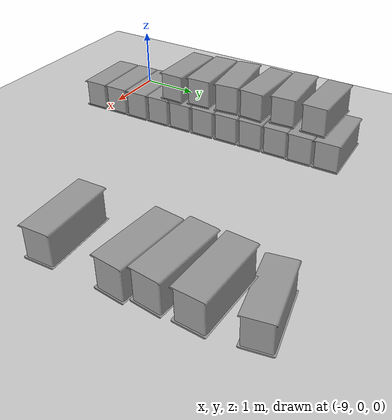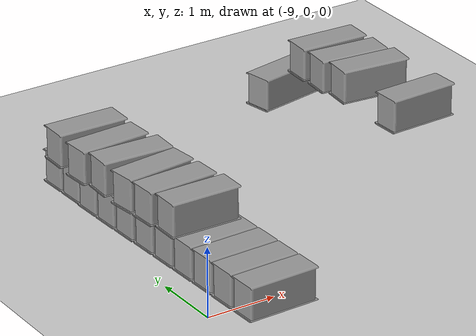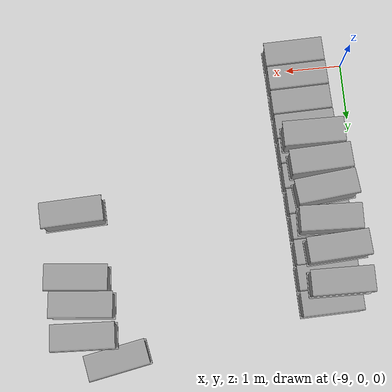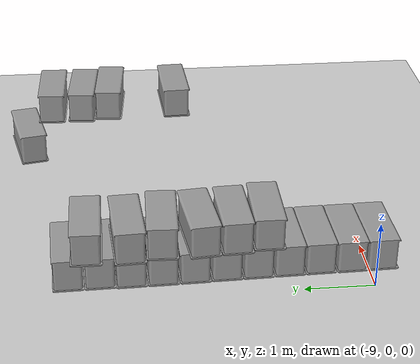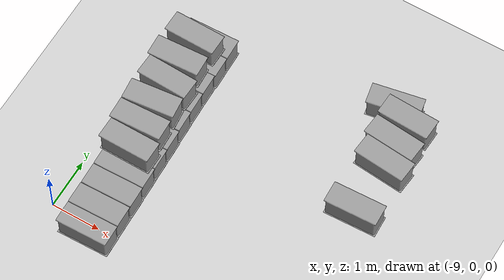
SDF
<sdf version="1.7">
 <world name="default">
  <model name="ground_plane">
   <static>1</static>
   <link name="link">
    <collision name="collision">
     <geometry><plane><normal>0 0 1</normal><size>100 100</size></plane></geometry>
     <surface>
      <contact><collide_bitmask>65535</collide_bitmask></contact>
      <friction><ode><mu>100</mu><mu2>50</mu2></ode></friction>
     </surface>
    </collision>
    <visual name="visual">
     <cast_shadows>0</cast_shadows>
     <geometry><plane><normal>0 0 1</normal><size>100 100</size></plane></geometry>
     <material>
      <script><uri>file://media/materials/scripts/gazebo.material</uri><name>Gazebo/Grey</name></script>
     </material>
    </visual>
   </link>
  </model>
  <model name="cotton_heng">
   <model name="cotton_me">
    <link name="link_1">
     <inertial>
      <mass>1</mass>
      <inertia>
       <ixx>0.166667</ixx>
       <ixy>0</ixy>
       <ixz>0</ixz>
       <iyy>0.166667</iyy>
       <iyz>0</iyz>
       <izz>0.166667</izz>
      </inertia>
     </inertial>
     <visual name="visual">
      <geometry><mesh><uri>/home/cyun/cotton_box.stl</uri><scale>1 1 1</scale></mesh></geometry>
      <material>
       <lighting>1</lighting>
       <script><uri>file://media/materials/scripts/gazebo.material</uri><name>Gazebo/Grey</name></script>
       <shader type="pixel"/>
      </material>
     </visual>
     <collision name="collision">
      <geometry><mesh><uri>/home/cyun/cotton_box.stl</uri><scale>1 1 1</scale></mesh></geometry>
      <surface>
       <friction>
        <ode><mu>1</mu><mu2>1</mu2><fdir1>0 0 0</fdir1><slip1>0</slip1><slip2>0</slip2></ode>
        <torsional>
         <coefficient>1</coefficient>
         <patch_radius>0</patch_radius>
         <surface_radius>0</surface_radius>
         <use_patch_radius>1</use_patch_radius>
         <ode><slip>0</slip></ode>
        </torsional>
       </friction>
       <bounce><restitution_coefficient>0</restitution_coefficient><threshold>1e+06</threshold></bounce>
       <contact>
        <collide_without_contact>0</collide_without_contact>
        <collide_without_contact_bitmask>1</collide_without_contact_bitmask>
        <collide_bitmask>1</collide_bitmask>
        <ode>
         <soft_cfm>0</soft_cfm>
         <soft_erp>0.2</soft_erp>
         <kp>1e+13</kp>
         <kd>1</kd>
         <max_vel>0.01</max_vel>
         <min_depth>0</min_depth>
        </ode>
        <bullet>
         <split_impulse>1</split_impulse>
         <split_impulse_penetration_threshold>-0.01</split_impulse_penetration_threshold>
         <soft_cfm>0</soft_cfm>
         <soft_erp>0.2</soft_erp>
         <kp>1e+13</kp>
         <kd>1</kd>
        </bullet>
       </contact>
      </surface>
     </collision>
    </link>
    <static>0</static>
    <pose>-1.77996 -0.007813 0 0 -0 0</pose>
   </model>
   <model name="cotton_me_clone">
    <link name="link_1">
     <inertial>
      <mass>1</mass>
      <inertia>
       <ixx>0.166667</ixx>
       <ixy>0</ixy>
       <ixz>0</ixz>
       <iyy>0.166667</iyy>
       <iyz>0</iyz>
       <izz>0.166667</izz>
      </inertia>
     </inertial>
     <visual name="visual">
      <geometry><mesh><uri>/home/cyun/cotton_box.stl</uri><scale>1 1 1</scale></mesh></geometry>
      <material>
       <lighting>1</lighting>
       <script><uri>file://media/materials/scripts/gazebo.material</uri><name>Gazebo/Grey</name></script>
       <shader type="pixel"/>
      </material>
     </visual>
     <collision name="collision">
      <geometry><mesh><uri>/home/cyun/cotton_box.stl</uri><scale>1 1 1</scale></mesh></geometry>
      <surface>
       <friction>
        <ode><mu>1</mu><mu2>1</mu2><fdir1>0 0 0</fdir1><slip1>0</slip1><slip2>0</slip2></ode>
        <torsional>
         <coefficient>1</coefficient>
         <patch_radius>0</patch_radius>
         <surface_radius>0</surface_radius>
         <use_patch_radius>1</use_patch_radius>
         <ode><slip>0</slip></ode>
        </torsional>
       </friction>
       <bounce><restitution_coefficient>0</restitution_coefficient><threshold>1e+06</threshold></bounce>
       <contact>
        <collide_without_contact>0</collide_without_contact>
        <collide_without_contact_bitmask>1</collide_without_contact_bitmask>
        <collide_bitmask>1</collide_bitmask>
        <ode>
         <soft_cfm>0</soft_cfm>
         <soft_erp>0.2</soft_erp>
         <kp>1e+13</kp>
         <kd>1</kd>
         <max_vel>0.01</max_vel>
         <min_depth>0</min_depth>
        </ode>
        <bullet>
         <split_impulse>1</split_impulse>
         <split_impulse_penetration_threshold>-0.01</split_impulse_penetration_threshold>
         <soft_cfm>0</soft_cfm>
         <soft_erp>0.2</soft_erp>
         <kp>1e+13</kp>
         <kd>1</kd>
        </bullet>
       </contact>
      </surface>
     </collision>
    </link>
    <static>0</static>
    <pose>-1.33368 -0.009895 0 0 -0 0</pose>
   </model>
   <model name="cotton_me_clone_0">
    <link name="link_1">
     <inertial>
      <mass>1</mass>
      <inertia>
       <ixx>0.166667</ixx>
       <ixy>0</ixy>
       <ixz>0</ixz>
       <iyy>0.166667</iyy>
       <iyz>0</iyz>
       <izz>0.166667</izz>
      </inertia>
     </inertial>
     <visual name="visual">
      <geometry><mesh><uri>/home/cyun/cotton_box.stl</uri><scale>1 1 1</scale></mesh></geometry>
      <material>
       <lighting>1</lighting>
       <script><uri>file://media/materials/scripts/gazebo.material</uri><name>Gazebo/Grey</name></script>
       <shader type="pixel"/>
      </material>
     </visual>
     <collision name="collision">
      <geometry><mesh><uri>/home/cyun/cotton_box.stl</uri><scale>1 1 1</scale></mesh></geometry>
      <surface>
       <friction>
        <ode><mu>1</mu><mu2>1</mu2><fdir1>0 0 0</fdir1><slip1>0</slip1><slip2>0</slip2></ode>
        <torsional>
         <coefficient>1</coefficient>
         <patch_radius>0</patch_radius>
         <surface_radius>0</surface_radius>
         <use_patch_radius>1</use_patch_radius>
         <ode><slip>0</slip></ode>
        </torsional>
       </friction>
       <bounce><restitution_coefficient>0</restitution_coefficient><threshold>1e+06</threshold></bounce>
       <contact>
        <collide_without_contact>0</collide_without_contact>
        <collide_without_contact_bitmask>1</collide_without_contact_bitmask>
        <collide_bitmask>1</collide_bitmask>
        <ode>
         <soft_cfm>0</soft_cfm>
         <soft_erp>0.2</soft_erp>
         <kp>1e+13</kp>
         <kd>1</kd>
         <max_vel>0.01</max_vel>
         <min_depth>0</min_depth>
        </ode>
        <bullet>
         <split_impulse>1</split_impulse>
         <split_impulse_penetration_threshold>-0.01</split_impulse_penetration_threshold>
         <soft_cfm>0</soft_cfm>
         <soft_erp>0.2</soft_erp>
         <kp>1e+13</kp>
         <kd>1</kd>
        </bullet>
       </contact>
      </surface>
     </collision>
    </link>
    <static>0</static>
    <pose>-0.889452 -0.005774 0 0 -0 0</pose>
   </model>
   <model name="cotton_me_clone_1">
    <link name="link_1">
     <inertial>
      <mass>1</mass>
      <inertia>
       <ixx>0.166667</ixx>
       <ixy>0</ixy>
       <ixz>0</ixz>
       <iyy>0.166667</iyy>
       <iyz>0</iyz>
       <izz>0.166667</izz>
      </inertia>
     </inertial>
     <visual name="visual">
      <geometry><mesh><uri>/home/cyun/cotton_box.stl</uri><scale>1 1 1</scale></mesh></geometry>
      <material>
       <lighting>1</lighting>
       <script><uri>file://media/materials/scripts/gazebo.material</uri><name>Gazebo/Grey</name></script>
       <shader type="pixel"/>
      </material>
     </visual>
     <collision name="collision">
      <geometry><mesh><uri>/home/cyun/cotton_box.stl</uri><scale>1 1 1</scale></mesh></geometry>
      <surface>
       <friction>
        <ode><mu>1</mu><mu2>1</mu2><fdir1>0 0 0</fdir1><slip1>0</slip1><slip2>0</slip2></ode>
        <torsional>
         <coefficient>1</coefficient>
         <patch_radius>0</patch_radius>
         <surface_radius>0</surface_radius>
         <use_patch_radius>1</use_patch_radius>
         <ode><slip>0</slip></ode>
        </torsional>
       </friction>
       <bounce><restitution_coefficient>0</restitution_coefficient><threshold>1e+06</threshold></bounce>
       <contact>
        <collide_without_contact>0</collide_without_contact>
        <collide_without_contact_bitmask>1</collide_without_contact_bitmask>
        <collide_bitmask>1</collide_bitmask>
        <ode>
         <soft_cfm>0</soft_cfm>
         <soft_erp>0.2</soft_erp>
         <kp>1e+13</kp>
         <kd>1</kd>
         <max_vel>0.01</max_vel>
         <min_depth>0</min_depth>
        </ode>
        <bullet>
         <split_impulse>1</split_impulse>
         <split_impulse_penetration_threshold>-0.01</split_impulse_penetration_threshold>
         <soft_cfm>0</soft_cfm>
         <soft_erp>0.2</soft_erp>
         <kp>1e+13</kp>
         <kd>1</kd>
        </bullet>
       </contact>
      </surface>
     </collision>
    </link>
    <static>0</static>
    <pose>-0.445737 -0.001627 0 0 -0 0</pose>
   </model>
   <model name="cotton_me_clone_2">
    <link name="link_1">
     <inertial>
      <mass>1</mass>
      <inertia>
       <ixx>0.166667</ixx>
       <ixy>0</ixy>
       <ixz>0</ixz>
       <iyy>0.166667</iyy>
       <iyz>0</iyz>
       <izz>0.166667</izz>
      </inertia>
     </inertial>
     <visual name="visual">
      <geometry><mesh><uri>/home/cyun/cotton_box.stl</uri><scale>1 1 1</scale></mesh></geometry>
      <material>
       <lighting>1</lighting>
       <script><uri>file://media/materials/scripts/gazebo.material</uri><name>Gazebo/Grey</name></script>
       <shader type="pixel"/>
      </material>
     </visual>
     <collision name="collision">
      <geometry><mesh><uri>/home/cyun/cotton_box.stl</uri><scale>1 1 1</scale></mesh></geometry>
      <surface>
       <friction>
        <ode><mu>1</mu><mu2>1</mu2><fdir1>0 0 0</fdir1><slip1>0</slip1><slip2>0</slip2></ode>
        <torsional>
         <coefficient>1</coefficient>
         <patch_radius>0</patch_radius>
         <surface_radius>0</surface_radius>
         <use_patch_radius>1</use_patch_radius>
         <ode><slip>0</slip></ode>
        </torsional>
       </friction>
       <bounce><restitution_coefficient>0</restitution_coefficient><threshold>1e+06</threshold></bounce>
       <contact>
        <collide_without_contact>0</collide_without_contact>
        <collide_without_contact_bitmask>1</collide_without_contact_bitmask>
        <collide_bitmask>1</collide_bitmask>
        <ode>
         <soft_cfm>0</soft_cfm>
         <soft_erp>0.2</soft_erp>
         <kp>1e+13</kp>
         <kd>1</kd>
         <max_vel>0.01</max_vel>
         <min_depth>0</min_depth>
        </ode>
        <bullet>
         <split_impulse>1</split_impulse>
         <split_impulse_penetration_threshold>-0.01</split_impulse_penetration_threshold>
         <soft_cfm>0</soft_cfm>
         <soft_erp>0.2</soft_erp>
         <kp>1e+13</kp>
         <kd>1</kd>
        </bullet>
       </contact>
      </surface>
     </collision>
    </link>
    <static>0</static>
    <pose>0.001194 0.000886 0 0 -0 0</pose>
   </model>
   <model name="cotton_me_clone_3">
    <link name="link_1">
     <inertial>
      <mass>1</mass>
      <inertia>
       <ixx>0.166667</ixx>
       <ixy>0</ixy>
       <ixz>0</ixz>
       <iyy>0.166667</iyy>
       <iyz>0</iyz>
       <izz>0.166667</izz>
      </inertia>
     </inertial>
     <visual name="visual">
      <geometry><mesh><uri>/home/cyun/cotton_box.stl</uri><scale>1 1 1</scale></mesh></geometry>
      <material>
       <lighting>1</lighting>
       <script><uri>file://media/materials/scripts/gazebo.material</uri><name>Gazebo/Grey</name></script>
       <shader type="pixel"/>
      </material>
     </visual>
     <collision name="collision">
      <geometry><mesh><uri>/home/cyun/cotton_box.stl</uri><scale>1 1 1</scale></mesh></geometry>
      <surface>
       <friction>
        <ode><mu>1</mu><mu2>1</mu2><fdir1>0 0 0</fdir1><slip1>0</slip1><slip2>0</slip2></ode>
        <torsional>
         <coefficient>1</coefficient>
         <patch_radius>0</patch_radius>
         <surface_radius>0</surface_radius>
         <use_patch_radius>1</use_patch_radius>
         <ode><slip>0</slip></ode>
        </torsional>
       </friction>
       <bounce><restitution_coefficient>0</restitution_coefficient><threshold>1e+06</threshold></bounce>
       <contact>
        <collide_without_contact>0</collide_without_contact>
        <collide_without_contact_bitmask>1</collide_without_contact_bitmask>
        <collide_bitmask>1</collide_bitmask>
        <ode>
         <soft_cfm>0</soft_cfm>
         <soft_erp>0.2</soft_erp>
         <kp>1e+13</kp>
         <kd>1</kd>
         <max_vel>0.01</max_vel>
         <min_depth>0</min_depth>
        </ode>
        <bullet>
         <split_impulse>1</split_impulse>
         <split_impulse_penetration_threshold>-0.01</split_impulse_penetration_threshold>
         <soft_cfm>0</soft_cfm>
         <soft_erp>0.2</soft_erp>
         <kp>1e+13</kp>
         <kd>1</kd>
        </bullet>
       </contact>
      </surface>
     </collision>
    </link>
    <static>0</static>
    <pose>0.448503 0.010252 0 0 -0 0</pose>
   </model>
   <model name="cotton_me_clone_4">
    <link name="link_1">
     <inertial>
      <mass>1</mass>
      <inertia>
       <ixx>0.166667</ixx>
       <ixy>0</ixy>
       <ixz>0</ixz>
       <iyy>0.166667</iyy>
       <iyz>0</iyz>
       <izz>0.166667</izz>
      </inertia>
     </inertial>
     <visual name="visual">
      <geometry><mesh><uri>/home/cyun/cotton_box.stl</uri><scale>1 1 1</scale></mesh></geometry>
      <material>
       <lighting>1</lighting>
       <script><uri>file://media/materials/scripts/gazebo.material</uri><name>Gazebo/Grey</name></script>
       <shader type="pixel"/>
      </material>
     </visual>
     <collision name="collision">
      <geometry><mesh><uri>/home/cyun/cotton_box.stl</uri><scale>1 1 1</scale></mesh></geometry>
      <surface>
       <friction>
        <ode><mu>1</mu><mu2>1</mu2><fdir1>0 0 0</fdir1><slip1>0</slip1><slip2>0</slip2></ode>
        <torsional>
         <coefficient>1</coefficient>
         <patch_radius>0</patch_radius>
         <surface_radius>0</surface_radius>
         <use_patch_radius>1</use_patch_radius>
         <ode><slip>0</slip></ode>
        </torsional>
       </friction>
       <bounce><restitution_coefficient>0</restitution_coefficient><threshold>1e+06</threshold></bounce>
       <contact>
        <collide_without_contact>0</collide_without_contact>
        <collide_without_contact_bitmask>1</collide_without_contact_bitmask>
        <collide_bitmask>1</collide_bitmask>
        <ode>
         <soft_cfm>0</soft_cfm>
         <soft_erp>0.2</soft_erp>
         <kp>1e+13</kp>
         <kd>1</kd>
         <max_vel>0.01</max_vel>
         <min_depth>0</min_depth>
        </ode>
        <bullet>
         <split_impulse>1</split_impulse>
         <split_impulse_penetration_threshold>-0.01</split_impulse_penetration_threshold>
         <soft_cfm>0</soft_cfm>
         <soft_erp>0.2</soft_erp>
         <kp>1e+13</kp>
         <kd>1</kd>
        </bullet>
       </contact>
      </surface>
     </collision>
    </link>
    <static>0</static>
    <pose>0.894659 0.014624 0 0 -0 0</pose>
   </model>
   <model name="cotton_me_clone_5">
    <link name="link_1">
     <inertial>
      <mass>1</mass>
      <inertia>
       <ixx>0.166667</ixx>
       <ixy>0</ixy>
       <ixz>0</ixz>
       <iyy>0.166667</iyy>
       <iyz>0</iyz>
       <izz>0.166667</izz>
      </inertia>
     </inertial>
     <visual name="visual">
      <geometry><mesh><uri>/home/cyun/cotton_box.stl</uri><scale>1 1 1</scale></mesh></geometry>
      <material>
       <lighting>1</lighting>
       <script><uri>file://media/materials/scripts/gazebo.material</uri><name>Gazebo/Grey</name></script>
       <shader type="pixel"/>
      </material>
     </visual>
     <collision name="collision">
      <geometry><mesh><uri>/home/cyun/cotton_box.stl</uri><scale>1 1 1</scale></mesh></geometry>
      <surface>
       <friction>
        <ode><mu>1</mu><mu2>1</mu2><fdir1>0 0 0</fdir1><slip1>0</slip1><slip2>0</slip2></ode>
        <torsional>
         <coefficient>1</coefficient>
         <patch_radius>0</patch_radius>
         <surface_radius>0</surface_radius>
         <use_patch_radius>1</use_patch_radius>
         <ode><slip>0</slip></ode>
        </torsional>
       </friction>
       <bounce><restitution_coefficient>0</restitution_coefficient><threshold>1e+06</threshold></bounce>
       <contact>
        <collide_without_contact>0</collide_without_contact>
        <collide_without_contact_bitmask>1</collide_without_contact_bitmask>
        <collide_bitmask>1</collide_bitmask>
        <ode>
         <soft_cfm>0</soft_cfm>
         <soft_erp>0.2</soft_erp>
         <kp>1e+13</kp>
         <kd>1</kd>
         <max_vel>0.01</max_vel>
         <min_depth>0</min_depth>
        </ode>
        <bullet>
         <split_impulse>1</split_impulse>
         <split_impulse_penetration_threshold>-0.01</split_impulse_penetration_threshold>
         <soft_cfm>0</soft_cfm>
         <soft_erp>0.2</soft_erp>
         <kp>1e+13</kp>
         <kd>1</kd>
        </bullet>
       </contact>
      </surface>
     </collision>
    </link>
    <static>0</static>
    <pose>1.33945 0.013464 0 0 -0 0</pose>
   </model>
   <model name="cotton_me_clone_6">
    <link name="link_1">
     <inertial>
      <mass>1</mass>
      <inertia>
       <ixx>0.166667</ixx>
       <ixy>0</ixy>
       <ixz>0</ixz>
       <iyy>0.166667</iyy>
       <iyz>0</iyz>
       <izz>0.166667</izz>
      </inertia>
     </inertial>
     <visual name="visual">
      <geometry><mesh><uri>/home/cyun/cotton_box.stl</uri><scale>1 1 1</scale></mesh></geometry>
      <material>
       <lighting>1</lighting>
       <script><uri>file://media/materials/scripts/gazebo.material</uri><name>Gazebo/Grey</name></script>
       <shader type="pixel"/>
      </material>
     </visual>
     <collision name="collision">
      <geometry><mesh><uri>/home/cyun/cotton_box.stl</uri><scale>1 1 1</scale></mesh></geometry>
      <surface>
       <friction>
        <ode><mu>1</mu><mu2>1</mu2><fdir1>0 0 0</fdir1><slip1>0</slip1><slip2>0</slip2></ode>
        <torsional>
         <coefficient>1</coefficient>
         <patch_radius>0</patch_radius>
         <surface_radius>0</surface_radius>
         <use_patch_radius>1</use_patch_radius>
         <ode><slip>0</slip></ode>
        </torsional>
       </friction>
       <bounce><restitution_coefficient>0</restitution_coefficient><threshold>1e+06</threshold></bounce>
       <contact>
        <collide_without_contact>0</collide_without_contact>
        <collide_without_contact_bitmask>1</collide_without_contact_bitmask>
        <collide_bitmask>1</collide_bitmask>
        <ode>
         <soft_cfm>0</soft_cfm>
         <soft_erp>0.2</soft_erp>
         <kp>1e+13</kp>
         <kd>1</kd>
         <max_vel>0.01</max_vel>
         <min_depth>0</min_depth>
        </ode>
        <bullet>
         <split_impulse>1</split_impulse>
         <split_impulse_penetration_threshold>-0.01</split_impulse_penetration_threshold>
         <soft_cfm>0</soft_cfm>
         <soft_erp>0.2</soft_erp>
         <kp>1e+13</kp>
         <kd>1</kd>
        </bullet>
       </contact>
      </surface>
     </collision>
    </link>
    <static>0</static>
    <pose>1.77292 -0.000762 0 0 -0 0</pose>
   </model>
   <model name="cotton_me_clone_7">
    <link name="link_1">
     <inertial>
      <mass>1</mass>
      <inertia>
       <ixx>0.166667</ixx>
       <ixy>0</ixy>
       <ixz>0</ixz>
       <iyy>0.166667</iyy>
       <iyz>0</iyz>
       <izz>0.166667</izz>
      </inertia>
     </inertial>
     <visual name="visual">
      <geometry><mesh><uri>/home/cyun/cotton_box.stl</uri><scale>1 1 1</scale></mesh></geometry>
      <material>
       <lighting>1</lighting>
       <script><uri>file://media/materials/scripts/gazebo.material</uri><name>Gazebo/Grey</name></script>
       <shader type="pixel"/>
      </material>
     </visual>
     <collision name="collision">
      <geometry><mesh><uri>/home/cyun/cotton_box.stl</uri><scale>1 1 1</scale></mesh></geometry>
      <surface>
       <friction>
        <ode><mu>1</mu><mu2>1</mu2><fdir1>0 0 0</fdir1><slip1>0</slip1><slip2>0</slip2></ode>
        <torsional>
         <coefficient>1</coefficient>
         <patch_radius>0</patch_radius>
         <surface_radius>0</surface_radius>
         <use_patch_radius>1</use_patch_radius>
         <ode><slip>0</slip></ode>
        </torsional>
       </friction>
       <bounce><restitution_coefficient>0</restitution_coefficient><threshold>1e+06</threshold></bounce>
       <contact>
        <collide_without_contact>0</collide_without_contact>
        <collide_without_contact_bitmask>1</collide_without_contact_bitmask>
        <collide_bitmask>1</collide_bitmask>
        <ode>
         <soft_cfm>0</soft_cfm>
         <soft_erp>0.2</soft_erp>
         <kp>1e+13</kp>
         <kd>1</kd>
         <max_vel>0.01</max_vel>
         <min_depth>0</min_depth>
        </ode>
        <bullet>
         <split_impulse>1</split_impulse>
         <split_impulse_penetration_threshold>-0.01</split_impulse_penetration_threshold>
         <soft_cfm>0</soft_cfm>
         <soft_erp>0.2</soft_erp>
         <kp>1e+13</kp>
         <kd>1</kd>
        </bullet>
       </contact>
      </surface>
     </collision>
    </link>
    <static>0</static>
    <pose>2.21576 -0.001881 0 0 -0 0</pose>
   </model>
   <model name="cotton_me_clone_8">
    <link name="link_1">
     <inertial>
      <mass>1</mass>
      <inertia>
       <ixx>0.166667</ixx>
       <ixy>0</ixy>
       <ixz>0</ixz>
       <iyy>0.166667</iyy>
       <iyz>0</iyz>
       <izz>0.166667</izz>
      </inertia>
     </inertial>
     <visual name="visual">
      <geometry><mesh><uri>/home/cyun/cotton_box.stl</uri><scale>1 1 1</scale></mesh></geometry>
      <material>
       <lighting>1</lighting>
       <script><uri>file://media/materials/scripts/gazebo.material</uri><name>Gazebo/Grey</name></script>
       <shader type="pixel"/>
      </material>
     </visual>
     <collision name="collision">
      <geometry><mesh><uri>/home/cyun/cotton_box.stl</uri><scale>1 1 1</scale></mesh></geometry>
      <surface>
       <friction>
        <ode><mu>1</mu><mu2>1</mu2><fdir1>0 0 0</fdir1><slip1>0</slip1><slip2>0</slip2></ode>
        <torsional>
         <coefficient>1</coefficient>
         <patch_radius>0</patch_radius>
         <surface_radius>0</surface_radius>
         <use_patch_radius>1</use_patch_radius>
         <ode><slip>0</slip></ode>
        </torsional>
       </friction>
       <bounce><restitution_coefficient>0</restitution_coefficient><threshold>1e+06</threshold></bounce>
       <contact>
        <collide_without_contact>0</collide_without_contact>
        <collide_without_contact_bitmask>1</collide_without_contact_bitmask>
        <collide_bitmask>1</collide_bitmask>
        <ode>
         <soft_cfm>0</soft_cfm>
         <soft_erp>0.2</soft_erp>
         <kp>1e+13</kp>
         <kd>1</kd>
         <max_vel>0.01</max_vel>
         <min_depth>0</min_depth>
        </ode>
        <bullet>
         <split_impulse>1</split_impulse>
         <split_impulse_penetration_threshold>-0.01</split_impulse_penetration_threshold>
         <soft_cfm>0</soft_cfm>
         <soft_erp>0.2</soft_erp>
         <kp>1e+13</kp>
         <kd>1</kd>
        </bullet>
       </contact>
      </surface>
     </collision>
    </link>
    <static>0</static>
    <pose>-2.22367 -0.011477 0 0 -0 0</pose>
   </model>
   <static>0</static>
   <pose>-8.18289 2.03525 0.01999 -1e-06 -0 1.59641</pose>
  </model>
  <model name="cotton_me_0_clone_6_clone_0_clone_clone_9">
   <link name="link_1">
    <inertial>
     <mass>1</mass>
     <inertia>
      <ixx>0.166667</ixx>
      <ixy>0</ixy>
      <ixz>0</ixz>
      <iyy>0.166667</iyy>
      <iyz>0</iyz>
      <izz>0.166667</izz>
     </inertia>
    </inertial>
    <visual name="visual">
     <geometry><mesh><uri>/home/cyun/cotton_box.stl</uri><scale>1 1 1</scale></mesh></geometry>
     <material>
      <lighting>1</lighting>
      <script><uri>file://media/materials/scripts/gazebo.material</uri><name>Gazebo/Grey</name></script>
      <shader type="pixel"/>
     </material>
    </visual>
    <collision name="collision">
     <geometry><mesh><uri>/home/cyun/cotton_box.stl</uri><scale>1 1 1</scale></mesh></geometry>
     <surface>
      <friction>
       <ode><mu>1</mu><mu2>1</mu2><fdir1>0 0 0</fdir1><slip1>0</slip1><slip2>0</slip2></ode>
       <torsional>
        <coefficient>1</coefficient>
        <patch_radius>0</patch_radius>
        <surface_radius>0</surface_radius>
        <use_patch_radius>1</use_patch_radius>
        <ode><slip>0</slip></ode>
       </torsional>
      </friction>
      <bounce><restitution_coefficient>0</restitution_coefficient><threshold>1e+06</threshold></bounce>
      <contact>
       <collide_without_contact>0</collide_without_contact>
       <collide_without_contact_bitmask>1</collide_without_contact_bitmask>
       <collide_bitmask>1</collide_bitmask>
       <ode>
        <soft_cfm>0</soft_cfm>
        <soft_erp>0.2</soft_erp>
        <kp>1e+13</kp>
        <kd>1</kd>
        <max_vel>0.01</max_vel>
        <min_depth>0</min_depth>
       </ode>
       <bullet>
        <split_impulse>1</split_impulse>
        <split_impulse_penetration_threshold>-0.01</split_impulse_penetration_threshold>
        <soft_cfm>0</soft_cfm>
        <soft_erp>0.2</soft_erp>
        <kp>1e+13</kp>
        <kd>1</kd>
       </bullet>
      </contact>
     </surface>
    </collision>
   </link>
   <static>0</static>
   <pose>-4.57797 4.86756 0.01995 -4e-06 -3e-06 1.75819</pose>
  </model>
  <model name="cotton_me_0_clone_6_clone_0_clone_clone_11">
   <link name="link_1">
    <inertial>
     <mass>1</mass>
     <inertia>
      <ixx>0.166667</ixx>
      <ixy>0</ixy>
      <ixz>0</ixz>
      <iyy>0.166667</iyy>
      <iyz>0</iyz>
      <izz>0.166667</izz>
     </inertia>
    </inertial>
    <visual name="visual">
     <geometry><mesh><uri>/home/cyun/cotton_box.stl</uri><scale>1 1 1</scale></mesh></geometry>
     <material>
      <lighting>1</lighting>
      <script><uri>file://media/materials/scripts/gazebo.material</uri><name>Gazebo/Grey</name></script>
      <shader type="pixel"/>
     </material>
    </visual>
    <collision name="collision">
     <geometry><mesh><uri>/home/cyun/cotton_box.stl</uri><scale>1 1 1</scale></mesh></geometry>
     <surface>
      <friction>
       <ode><mu>1</mu><mu2>1</mu2><fdir1>0 0 0</fdir1><slip1>0</slip1><slip2>0</slip2></ode>
       <torsional>
        <coefficient>1</coefficient>
        <patch_radius>0</patch_radius>
        <surface_radius>0</surface_radius>
        <use_patch_radius>1</use_patch_radius>
        <ode><slip>0</slip></ode>
       </torsional>
      </friction>
      <bounce><restitution_coefficient>0</restitution_coefficient><threshold>1e+06</threshold></bounce>
      <contact>
       <collide_without_contact>0</collide_without_contact>
       <collide_without_contact_bitmask>1</collide_without_contact_bitmask>
       <collide_bitmask>1</collide_bitmask>
       <ode>
        <soft_cfm>0</soft_cfm>
        <soft_erp>0.2</soft_erp>
        <kp>1e+13</kp>
        <kd>1</kd>
        <max_vel>0.01</max_vel>
        <min_depth>0</min_depth>
       </ode>
       <bullet>
        <split_impulse>1</split_impulse>
        <split_impulse_penetration_threshold>-0.01</split_impulse_penetration_threshold>
        <soft_cfm>0</soft_cfm>
        <soft_erp>0.2</soft_erp>
        <kp>1e+13</kp>
        <kd>1</kd>
       </bullet>
      </contact>
     </surface>
    </collision>
   </link>
   <static>0</static>
   <pose>-4.11314 4.44843 0.509962 -3e-06 2.8e-05 1.52488</pose>
  </model>
  <model name="cotton_me_0_clone_6_clone_0_clone_clone_12">
   <link name="link_1">
    <inertial>
     <mass>1</mass>
     <inertia>
      <ixx>0.166667</ixx>
      <ixy>0</ixy>
      <ixz>0</ixz>
      <iyy>0.166667</iyy>
      <iyz>0</iyz>
      <izz>0.166667</izz>
     </inertia>
    </inertial>
    <visual name="visual">
     <geometry><mesh><uri>/home/cyun/cotton_box.stl</uri><scale>1 1 1</scale></mesh></geometry>
     <material>
      <lighting>1</lighting>
      <script><uri>file://media/materials/scripts/gazebo.material</uri><name>Gazebo/Grey</name></script>
      <shader type="pixel"/>
     </material>
    </visual>
    <collision name="collision">
     <geometry><mesh><uri>/home/cyun/cotton_box.stl</uri><scale>1 1 1</scale></mesh></geometry>
     <surface>
      <friction>
       <ode><mu>1</mu><mu2>1</mu2><fdir1>0 0 0</fdir1><slip1>0</slip1><slip2>0</slip2></ode>
       <torsional>
        <coefficient>1</coefficient>
        <patch_radius>0</patch_radius>
        <surface_radius>0</surface_radius>
        <use_patch_radius>1</use_patch_radius>
        <ode><slip>0</slip></ode>
       </torsional>
      </friction>
      <bounce><restitution_coefficient>0</restitution_coefficient><threshold>1e+06</threshold></bounce>
      <contact>
       <collide_without_contact>0</collide_without_contact>
       <collide_without_contact_bitmask>1</collide_without_contact_bitmask>
       <collide_bitmask>1</collide_bitmask>
       <ode>
        <soft_cfm>0</soft_cfm>
        <soft_erp>0.2</soft_erp>
        <kp>1e+13</kp>
        <kd>1</kd>
        <max_vel>0.01</max_vel>
        <min_depth>0</min_depth>
       </ode>
       <bullet>
        <split_impulse>1</split_impulse>
        <split_impulse_penetration_threshold>-0.01</split_impulse_penetration_threshold>
        <soft_cfm>0</soft_cfm>
        <soft_erp>0.2</soft_erp>
        <kp>1e+13</kp>
        <kd>1</kd>
       </bullet>
      </contact>
     </surface>
    </collision>
   </link>
   <static>0</static>
   <pose>-4.11657 3.93839 0.509972 -6.3e-05 2.2e-05 1.47719</pose>
  </model>
  <model name="cotton_me_0_clone_6_clone_0_clone_clone_13">
   <link name="link_1">
    <inertial>
     <mass>1</mass>
     <inertia>
      <ixx>0.166667</ixx>
      <ixy>0</ixy>
      <ixz>0</ixz>
      <iyy>0.166667</iyy>
      <iyz>0</iyz>
      <izz>0.166667</izz>
     </inertia>
    </inertial>
    <visual name="visual">
     <geometry><mesh><uri>/home/cyun/cotton_box.stl</uri><scale>1 1 1</scale></mesh></geometry>
     <material>
      <lighting>1</lighting>
      <script><uri>file://media/materials/scripts/gazebo.material</uri><name>Gazebo/Grey</name></script>
      <shader type="pixel"/>
     </material>
    </visual>
    <collision name="collision">
     <geometry><mesh><uri>/home/cyun/cotton_box.stl</uri><scale>1 1 1</scale></mesh></geometry>
     <surface>
      <friction>
       <ode><mu>1</mu><mu2>1</mu2><fdir1>0 0 0</fdir1><slip1>0</slip1><slip2>0</slip2></ode>
       <torsional>
        <coefficient>1</coefficient>
        <patch_radius>0</patch_radius>
        <surface_radius>0</surface_radius>
        <use_patch_radius>1</use_patch_radius>
        <ode><slip>0</slip></ode>
       </torsional>
      </friction>
      <bounce><restitution_coefficient>0</restitution_coefficient><threshold>1e+06</threshold></bounce>
      <contact>
       <collide_without_contact>0</collide_without_contact>
       <collide_without_contact_bitmask>1</collide_without_contact_bitmask>
       <collide_bitmask>1</collide_bitmask>
       <ode>
        <soft_cfm>0</soft_cfm>
        <soft_erp>0.2</soft_erp>
        <kp>1e+13</kp>
        <kd>1</kd>
        <max_vel>0.01</max_vel>
        <min_depth>0</min_depth>
       </ode>
       <bullet>
        <split_impulse>1</split_impulse>
        <split_impulse_penetration_threshold>-0.01</split_impulse_penetration_threshold>
        <soft_cfm>0</soft_cfm>
        <soft_erp>0.2</soft_erp>
        <kp>1e+13</kp>
        <kd>1</kd>
       </bullet>
      </contact>
     </surface>
    </collision>
   </link>
   <static>0</static>
   <pose>-4.06809 3.49144 0.509993 -1e-06 -2e-06 1.47637</pose>
  </model>
  <model name="cotton_me_0_clone_6_clone_0_clone_clone_20">
   <link name="link_1">
    <inertial>
     <mass>1</mass>
     <inertia>
      <ixx>0.166667</ixx>
      <ixy>0</ixy>
      <ixz>0</ixz>
      <iyy>0.166667</iyy>
      <iyz>0</iyz>
      <izz>0.166667</izz>
     </inertia>
    </inertial>
    <visual name="visual">
     <geometry><mesh><uri>/home/cyun/cotton_box.stl</uri><scale>1 1 1</scale></mesh></geometry>
     <material>
      <lighting>1</lighting>
      <script><uri>file://media/materials/scripts/gazebo.material</uri><name>Gazebo/Grey</name></script>
      <shader type="pixel"/>
     </material>
    </visual>
    <collision name="collision">
     <geometry><mesh><uri>/home/cyun/cotton_box.stl</uri><scale>1 1 1</scale></mesh></geometry>
     <surface>
      <friction>
       <ode><mu>1</mu><mu2>1</mu2><fdir1>0 0 0</fdir1><slip1>0</slip1><slip2>0</slip2></ode>
       <torsional>
        <coefficient>1</coefficient>
        <patch_radius>0</patch_radius>
        <surface_radius>0</surface_radius>
        <use_patch_radius>1</use_patch_radius>
        <ode><slip>0</slip></ode>
       </torsional>
      </friction>
      <bounce><restitution_coefficient>0</restitution_coefficient><threshold>1e+06</threshold></bounce>
      <contact>
       <collide_without_contact>0</collide_without_contact>
       <collide_without_contact_bitmask>1</collide_without_contact_bitmask>
       <collide_bitmask>1</collide_bitmask>
       <ode>
        <soft_cfm>0</soft_cfm>
        <soft_erp>0.2</soft_erp>
        <kp>1e+13</kp>
        <kd>1</kd>
        <max_vel>0.01</max_vel>
        <min_depth>0</min_depth>
       </ode>
       <bullet>
        <split_impulse>1</split_impulse>
        <split_impulse_penetration_threshold>-0.01</split_impulse_penetration_threshold>
        <soft_cfm>0</soft_cfm>
        <soft_erp>0.2</soft_erp>
        <kp>1e+13</kp>
        <kd>1</kd>
       </bullet>
      </contact>
     </surface>
    </collision>
   </link>
   <static>0</static>
   <pose>-4.06584 2.41153 0.51006 0.000143 -5.6e-05 1.6107</pose>
  </model>
  <model name="cotton_me_0_clone_6_clone_0_clone_clone_24">
   <link name="link_1">
    <inertial>
     <mass>1</mass>
     <inertia>
      <ixx>0.166667</ixx>
      <ixy>0</ixy>
      <ixz>0</ixz>
      <iyy>0.166667</iyy>
      <iyz>0</iyz>
      <izz>0.166667</izz>
     </inertia>
    </inertial>
    <visual name="visual">
     <geometry><mesh><uri>/home/cyun/cotton_box.stl</uri><scale>1 1 1</scale></mesh></geometry>
     <material>
      <lighting>1</lighting>
      <script><uri>file://media/materials/scripts/gazebo.material</uri><name>Gazebo/Grey</name></script>
      <shader type="pixel"/>
     </material>
    </visual>
    <collision name="collision">
     <geometry><mesh><uri>/home/cyun/cotton_box.stl</uri><scale>1 1 1</scale></mesh></geometry>
     <surface>
      <friction>
       <ode><mu>1</mu><mu2>1</mu2><fdir1>0 0 0</fdir1><slip1>0</slip1><slip2>0</slip2></ode>
       <torsional>
        <coefficient>1</coefficient>
        <patch_radius>0</patch_radius>
        <surface_radius>0</surface_radius>
        <use_patch_radius>1</use_patch_radius>
        <ode><slip>0</slip></ode>
       </torsional>
      </friction>
      <bounce><restitution_coefficient>0</restitution_coefficient><threshold>1e+06</threshold></bounce>
      <contact>
       <collide_without_contact>0</collide_without_contact>
       <collide_without_contact_bitmask>1</collide_without_contact_bitmask>
       <collide_bitmask>1</collide_bitmask>
       <ode>
        <soft_cfm>0</soft_cfm>
        <soft_erp>0.2</soft_erp>
        <kp>1e+13</kp>
        <kd>1</kd>
        <max_vel>0.01</max_vel>
        <min_depth>0</min_depth>
       </ode>
       <bullet>
        <split_impulse>1</split_impulse>
        <split_impulse_penetration_threshold>-0.01</split_impulse_penetration_threshold>
        <soft_cfm>0</soft_cfm>
        <soft_erp>0.2</soft_erp>
        <kp>1e+13</kp>
        <kd>1</kd>
       </bullet>
      </contact>
     </surface>
    </collision>
   </link>
   <static>0</static>
   <pose>-8.21067 1.44039 0.509998 -5e-06 -8e-06 1.5631</pose>
  </model>
  <model name="cotton_me_0_clone_6_clone_0_clone_clone_25">
   <link name="link_1">
    <inertial>
     <mass>1</mass>
     <inertia>
      <ixx>0.166667</ixx>
      <ixy>0</ixy>
      <ixz>0</ixz>
      <iyy>0.166667</iyy>
      <iyz>0</iyz>
      <izz>0.166667</izz>
     </inertia>
    </inertial>
    <visual name="visual">
     <geometry><mesh><uri>/home/cyun/cotton_box.stl</uri><scale>1 1 1</scale></mesh></geometry>
     <material>
      <lighting>1</lighting>
      <script><uri>file://media/materials/scripts/gazebo.material</uri><name>Gazebo/Grey</name></script>
      <shader type="pixel"/>
     </material>
    </visual>
    <collision name="collision">
     <geometry><mesh><uri>/home/cyun/cotton_box.stl</uri><scale>1 1 1</scale></mesh></geometry>
     <surface>
      <friction>
       <ode><mu>1</mu><mu2>1</mu2><fdir1>0 0 0</fdir1><slip1>0</slip1><slip2>0</slip2></ode>
       <torsional>
        <coefficient>1</coefficient>
        <patch_radius>0</patch_radius>
        <surface_radius>0</surface_radius>
        <use_patch_radius>1</use_patch_radius>
        <ode><slip>0</slip></ode>
       </torsional>
      </friction>
      <bounce><restitution_coefficient>0</restitution_coefficient><threshold>1e+06</threshold></bounce>
      <contact>
       <collide_without_contact>0</collide_without_contact>
       <collide_without_contact_bitmask>1</collide_without_contact_bitmask>
       <collide_bitmask>1</collide_bitmask>
       <ode>
        <soft_cfm>0</soft_cfm>
        <soft_erp>0.2</soft_erp>
        <kp>1e+13</kp>
        <kd>1</kd>
        <max_vel>0.01</max_vel>
        <min_depth>0</min_depth>
       </ode>
       <bullet>
        <split_impulse>1</split_impulse>
        <split_impulse_penetration_threshold>-0.01</split_impulse_penetration_threshold>
        <soft_cfm>0</soft_cfm>
        <soft_erp>0.2</soft_erp>
        <kp>1e+13</kp>
        <kd>1</kd>
       </bullet>
      </contact>
     </surface>
    </collision>
   </link>
   <static>0</static>
   <pose>-8.27325 1.91117 0.510003 1e-06 -4.7e-05 1.61187</pose>
  </model>
  <model name="cotton_me_0_clone_6_clone_0_clone_clone_26">
   <link name="link_1">
    <inertial>
     <mass>1</mass>
     <inertia>
      <ixx>0.166667</ixx>
      <ixy>0</ixy>
      <ixz>0</ixz>
      <iyy>0.166667</iyy>
      <iyz>0</iyz>
      <izz>0.166667</izz>
     </inertia>
    </inertial>
    <visual name="visual">
     <geometry><mesh><uri>/home/cyun/cotton_box.stl</uri><scale>1 1 1</scale></mesh></geometry>
     <material>
      <lighting>1</lighting>
      <script><uri>file://media/materials/scripts/gazebo.material</uri><name>Gazebo/Grey</name></script>
      <shader type="pixel"/>
     </material>
    </visual>
    <collision name="collision">
     <geometry><mesh><uri>/home/cyun/cotton_box.stl</uri><scale>1 1 1</scale></mesh></geometry>
     <surface>
      <friction>
       <ode><mu>1</mu><mu2>1</mu2><fdir1>0 0 0</fdir1><slip1>0</slip1><slip2>0</slip2></ode>
       <torsional>
        <coefficient>1</coefficient>
        <patch_radius>0</patch_radius>
        <surface_radius>0</surface_radius>
        <use_patch_radius>1</use_patch_radius>
        <ode><slip>0</slip></ode>
       </torsional>
      </friction>
      <bounce><restitution_coefficient>0</restitution_coefficient><threshold>1e+06</threshold></bounce>
      <contact>
       <collide_without_contact>0</collide_without_contact>
       <collide_without_contact_bitmask>1</collide_without_contact_bitmask>
       <collide_bitmask>1</collide_bitmask>
       <ode>
        <soft_cfm>0</soft_cfm>
        <soft_erp>0.2</soft_erp>
        <kp>1e+13</kp>
        <kd>1</kd>
        <max_vel>0.01</max_vel>
        <min_depth>0</min_depth>
       </ode>
       <bullet>
        <split_impulse>1</split_impulse>
        <split_impulse_penetration_threshold>-0.01</split_impulse_penetration_threshold>
        <soft_cfm>0</soft_cfm>
        <soft_erp>0.2</soft_erp>
        <kp>1e+13</kp>
        <kd>1</kd>
       </bullet>
      </contact>
     </surface>
    </collision>
   </link>
   <static>0</static>
   <pose>-8.31088 2.39219 0.51 -1e-06 -5e-06 1.67501</pose>
  </model>
  <model name="cotton_me_0_clone_6_clone_0_clone_clone_27">
   <link name="link_1">
    <inertial>
     <mass>1</mass>
     <inertia>
      <ixx>0.166667</ixx>
      <ixy>0</ixy>
      <ixz>0</ixz>
      <iyy>0.166667</iyy>
      <iyz>0</iyz>
      <izz>0.166667</izz>
     </inertia>
    </inertial>
    <visual name="visual">
     <geometry><mesh><uri>/home/cyun/cotton_box.stl</uri><scale>1 1 1</scale></mesh></geometry>
     <material>
      <lighting>1</lighting>
      <script><uri>file://media/materials/scripts/gazebo.material</uri><name>Gazebo/Grey</name></script>
      <shader type="pixel"/>
     </material>
    </visual>
    <collision name="collision">
     <geometry><mesh><uri>/home/cyun/cotton_box.stl</uri><scale>1 1 1</scale></mesh></geometry>
     <surface>
      <friction>
       <ode><mu>1</mu><mu2>1</mu2><fdir1>0 0 0</fdir1><slip1>0</slip1><slip2>0</slip2></ode>
       <torsional>
        <coefficient>1</coefficient>
        <patch_radius>0</patch_radius>
        <surface_radius>0</surface_radius>
        <use_patch_radius>1</use_patch_radius>
        <ode><slip>0</slip></ode>
       </torsional>
      </friction>
      <bounce><restitution_coefficient>0</restitution_coefficient><threshold>1e+06</threshold></bounce>
      <contact>
       <collide_without_contact>0</collide_without_contact>
       <collide_without_contact_bitmask>1</collide_without_contact_bitmask>
       <collide_bitmask>1</collide_bitmask>
       <ode>
        <soft_cfm>0</soft_cfm>
        <soft_erp>0.2</soft_erp>
        <kp>1e+13</kp>
        <kd>1</kd>
        <max_vel>0.01</max_vel>
        <min_depth>0</min_depth>
       </ode>
       <bullet>
        <split_impulse>1</split_impulse>
        <split_impulse_penetration_threshold>-0.01</split_impulse_penetration_threshold>
        <soft_cfm>0</soft_cfm>
        <soft_erp>0.2</soft_erp>
        <kp>1e+13</kp>
        <kd>1</kd>
       </bullet>
      </contact>
     </surface>
    </collision>
   </link>
   <static>0</static>
   <pose>-8.3148 2.91565 0.509994 -1.4e-05 -3e-06 1.53137</pose>
  </model>
  <model name="cotton_me_0_clone_6_clone_0_clone_clone_28">
   <link name="link_1">
    <inertial>
     <mass>1</mass>
     <inertia>
      <ixx>0.166667</ixx>
      <ixy>0</ixy>
      <ixz>0</ixz>
      <iyy>0.166667</iyy>
      <iyz>0</iyz>
      <izz>0.166667</izz>
     </inertia>
    </inertial>
    <visual name="visual">
     <geometry><mesh><uri>/home/cyun/cotton_box.stl</uri><scale>1 1 1</scale></mesh></geometry>
     <material>
      <lighting>1</lighting>
      <script><uri>file://media/materials/scripts/gazebo.material</uri><name>Gazebo/Grey</name></script>
      <shader type="pixel"/>
     </material>
    </visual>
    <collision name="collision">
     <geometry><mesh><uri>/home/cyun/cotton_box.stl</uri><scale>1 1 1</scale></mesh></geometry>
     <surface>
      <friction>
       <ode><mu>1</mu><mu2>1</mu2><fdir1>0 0 0</fdir1><slip1>0</slip1><slip2>0</slip2></ode>
       <torsional>
        <coefficient>1</coefficient>
        <patch_radius>0</patch_radius>
        <surface_radius>0</surface_radius>
        <use_patch_radius>1</use_patch_radius>
        <ode><slip>0</slip></ode>
       </torsional>
      </friction>
      <bounce><restitution_coefficient>0</restitution_coefficient><threshold>1e+06</threshold></bounce>
      <contact>
       <collide_without_contact>0</collide_without_contact>
       <collide_without_contact_bitmask>1</collide_without_contact_bitmask>
       <collide_bitmask>1</collide_bitmask>
       <ode>
        <soft_cfm>0</soft_cfm>
        <soft_erp>0.2</soft_erp>
        <kp>1e+13</kp>
        <kd>1</kd>
        <max_vel>0.01</max_vel>
        <min_depth>0</min_depth>
       </ode>
       <bullet>
        <split_impulse>1</split_impulse>
        <split_impulse_penetration_threshold>-0.01</split_impulse_penetration_threshold>
        <soft_cfm>0</soft_cfm>
        <soft_erp>0.2</soft_erp>
        <kp>1e+13</kp>
        <kd>1</kd>
       </bullet>
      </contact>
     </surface>
    </collision>
   </link>
   <static>0</static>
   <pose>-8.38396 3.39943 0.510002 -2.6e-05 -1.6e-05 1.62317</pose>
  </model>
  <model name="cotton_me_0_clone_6_clone_0_clone_clone_29">
   <link name="link_1">
    <inertial>
     <mass>1</mass>
     <inertia>
      <ixx>0.166667</ixx>
      <ixy>0</ixy>
      <ixz>0</ixz>
      <iyy>0.166667</iyy>
      <iyz>0</iyz>
      <izz>0.166667</izz>
     </inertia>
    </inertial>
    <visual name="visual">
     <geometry><mesh><uri>/home/cyun/cotton_box.stl</uri><scale>1 1 1</scale></mesh></geometry>
     <material>
      <lighting>1</lighting>
      <script><uri>file://media/materials/scripts/gazebo.material</uri><name>Gazebo/Grey</name></script>
      <shader type="pixel"/>
     </material>
    </visual>
    <collision name="collision">
     <geometry><mesh><uri>/home/cyun/cotton_box.stl</uri><scale>1 1 1</scale></mesh></geometry>
     <surface>
      <friction>
       <ode><mu>1</mu><mu2>1</mu2><fdir1>0 0 0</fdir1><slip1>0</slip1><slip2>0</slip2></ode>
       <torsional>
        <coefficient>1</coefficient>
        <patch_radius>0</patch_radius>
        <surface_radius>0</surface_radius>
        <use_patch_radius>1</use_patch_radius>
        <ode><slip>0</slip></ode>
       </torsional>
      </friction>
      <bounce><restitution_coefficient>0</restitution_coefficient><threshold>1e+06</threshold></bounce>
      <contact>
       <collide_without_contact>0</collide_without_contact>
       <collide_without_contact_bitmask>1</collide_without_contact_bitmask>
       <collide_bitmask>1</collide_bitmask>
       <ode>
        <soft_cfm>0</soft_cfm>
        <soft_erp>0.2</soft_erp>
        <kp>1e+13</kp>
        <kd>1</kd>
        <max_vel>0.01</max_vel>
        <min_depth>0</min_depth>
       </ode>
       <bullet>
        <split_impulse>1</split_impulse>
        <split_impulse_penetration_threshold>-0.01</split_impulse_penetration_threshold>
        <soft_cfm>0</soft_cfm>
        <soft_erp>0.2</soft_erp>
        <kp>1e+13</kp>
        <kd>1</kd>
       </bullet>
      </contact>
     </surface>
    </collision>
   </link>
   <static>0</static>
   <pose>-8.36885 3.96896 0.509994 -1.5e-05 2.5e-05 1.55353</pose>
  </model>
 </world>
</sdf>
